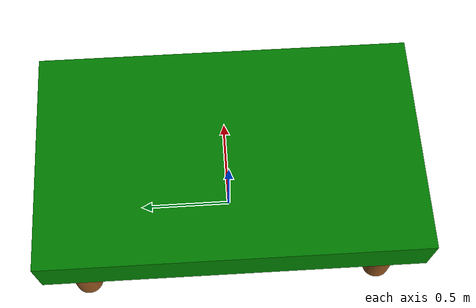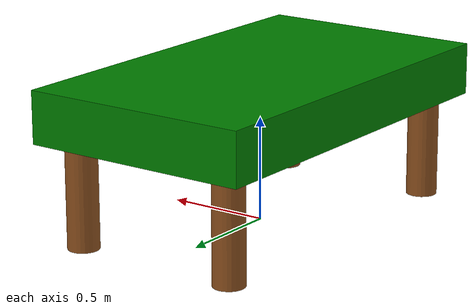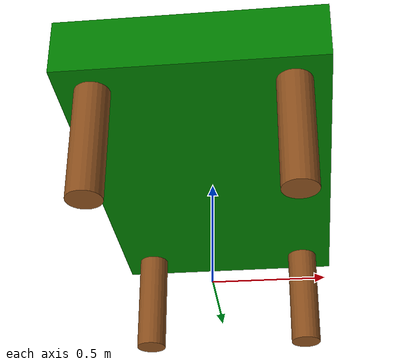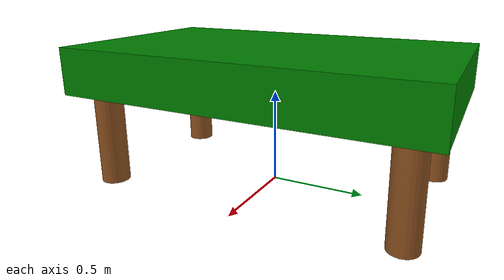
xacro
<?xml version="1.0"?>
<robot xmlns:xacro="http://www.ros.org/wiki/xacro" name="pool_table">

  <!-- Define Parameters -->
  <xacro:property name="table_leg_radius" value="0.075"/>
  <xacro:property name="table_leg_length" value="0.5"/>

  <xacro:property name="table_inner_width" value="0.82"/>
  <xacro:property name="table_outer_width" value="1.12"/>
  <xacro:property name="table_inner_length" value="1.6"/>
  <xacro:property name="table_outer_length" value="1.9"/>
  <xacro:property name="table_inner_height" value="0.75"/>
  <xacro:property name="table_outer_height" value="0.8"/>

  <xacro:property name="tabletop_inner_height" value="${table_inner_height-table_leg_length}"/>
  <xacro:property name="tabletop_outer_height" value="${table_outer_height-table_leg_length}"/>

  <!-- Define macro for table legs -->
  <xacro:macro name="table_leg" params="name">
    <link name="table_leg_${name}">
      <visual>
        <geometry>
          <cylinder radius="${table_leg_radius}" length="${table_leg_length}"/>
        </geometry>
        <origin xyz="0 0 -${table_leg_length/2}"/>
        <material name="brown"/>
      </visual>
      <collision>
        <geometry>
          <cylinder radius="${table_leg_radius}" length="${table_leg_length}"/>
        </geometry>
        <origin xyz="0 0 -${table_leg_length/2}"/>
      </collision>
    </link>
  </xacro:macro>

  <!-- Define Materials -->
  <material name="black">
    <color rgba="0 0 0 1"/>
  </material>

  <material name="white">
    <color rgba="1 1 1 1"/>
  </material>

  <material name="brown">
    <color rgba="0.56 0.32 0.12 1"/>
  </material>

  <material name="green">
    <color rgba="0 0.5 0 1"/>
  </material>

  <!-- Define links and joints -->

  <link name="world">
  </link>

  <link name="tabletop">
    <visual>
      <geometry>
        <box size="${table_outer_width} ${table_outer_length} ${tabletop_inner_height}"/>
      </geometry>
      <origin xyz="0 0 ${(tabletop_inner_height)/2}"/>
      <material name="green"/>
    </visual>
    <collision>
      <geometry>
        <box size="${table_outer_width} ${table_outer_length} ${tabletop_inner_height}"/>
      </geometry>
      <origin xyz="0 0 ${(tabletop_inner_height)/2}"/>
    </collision>
  </link>
  <joint name="tabletop_to_world" type="fixed">
    <parent link="world"/>
    <child link="tabletop"/>
    <origin xyz="0 0 ${table_leg_length}"/>
  </joint>

  <!-- table_frame_ends, table_frame_sides -->

  <xacro:table_leg name="FL"/>
  <xacro:table_leg name="BL"/>
  <xacro:table_leg name="FR"/>
  <xacro:table_leg name="BR"/>

  <joint name="table_leg_FL_to_tabletop" type="fixed">
    <parent link="tabletop"/>
    <child link="table_leg_FL"/>
    <origin xyz="${table_inner_width/2} ${table_inner_length/2} 0"/>
  </joint>
  <joint name="table_leg_BL_to_tabletop" type="fixed">
    <parent link="tabletop"/>
    <child link="table_leg_BL"/>
    <origin xyz="${-table_inner_width/2} ${table_inner_length/2} 0"/>
  </joint>
  <joint name="table_leg_FR_to_tabletop" type="fixed">
    <parent link="tabletop"/>
    <child link="table_leg_FR"/>
    <origin xyz="${table_inner_width/2} ${-table_inner_length/2} 0"/>
  </joint>
  <joint name="table_leg_BR_to_tabletop" type="fixed">
    <parent link="tabletop"/>
    <child link="table_leg_BR"/>
    <origin xyz="${-table_inner_width/2} ${-table_inner_length/2} 0"/>
  </joint>

</robot>
